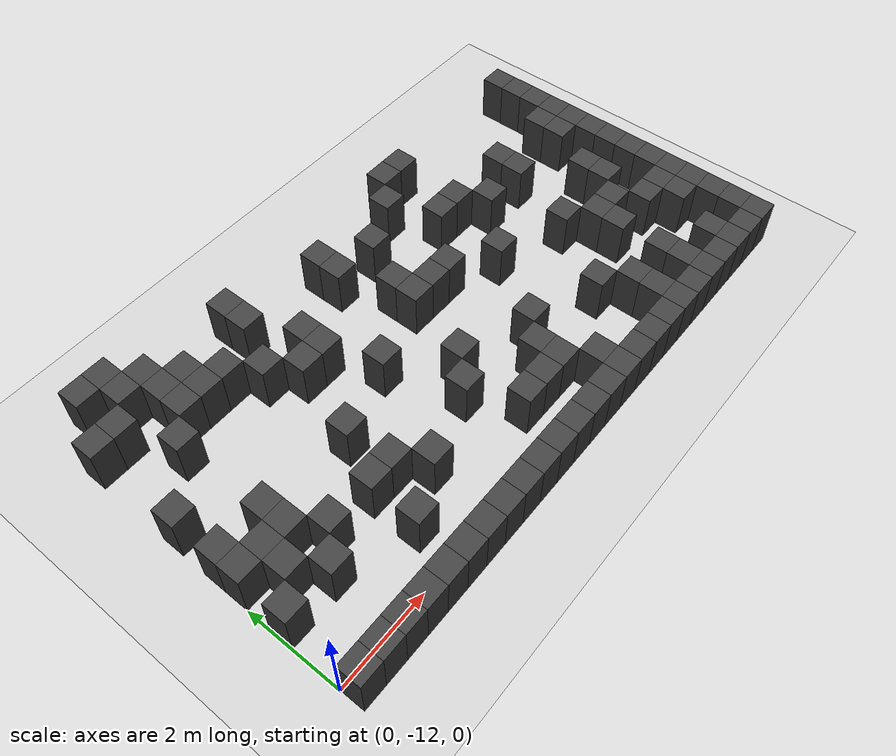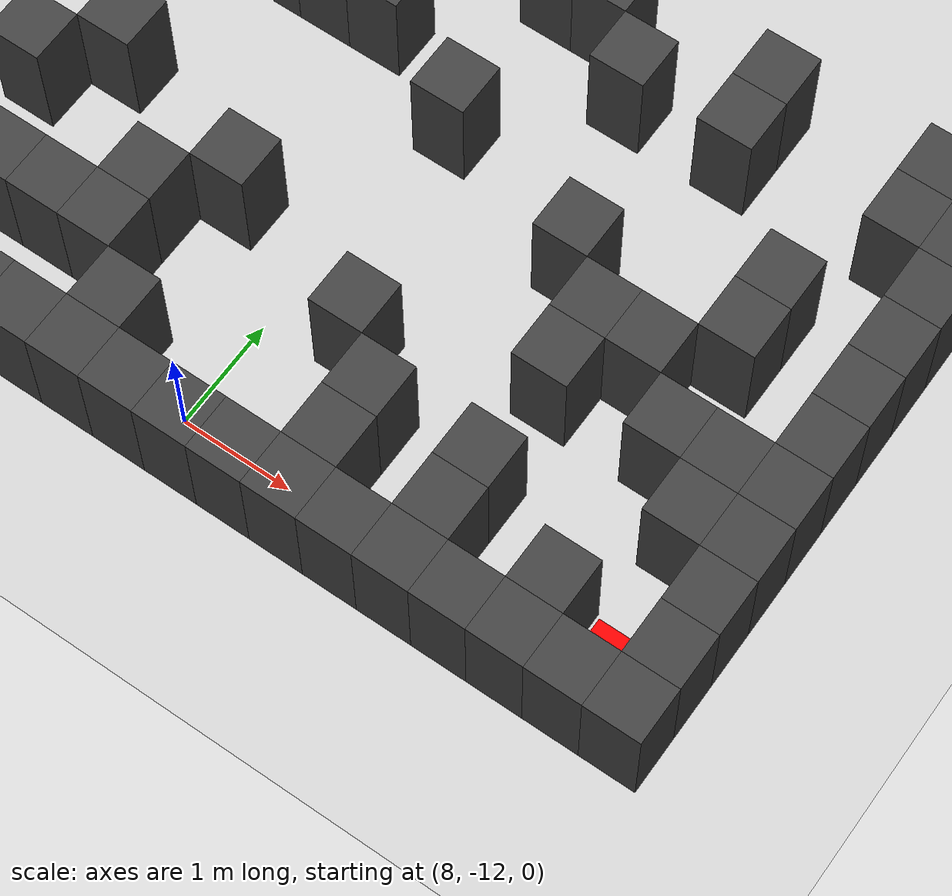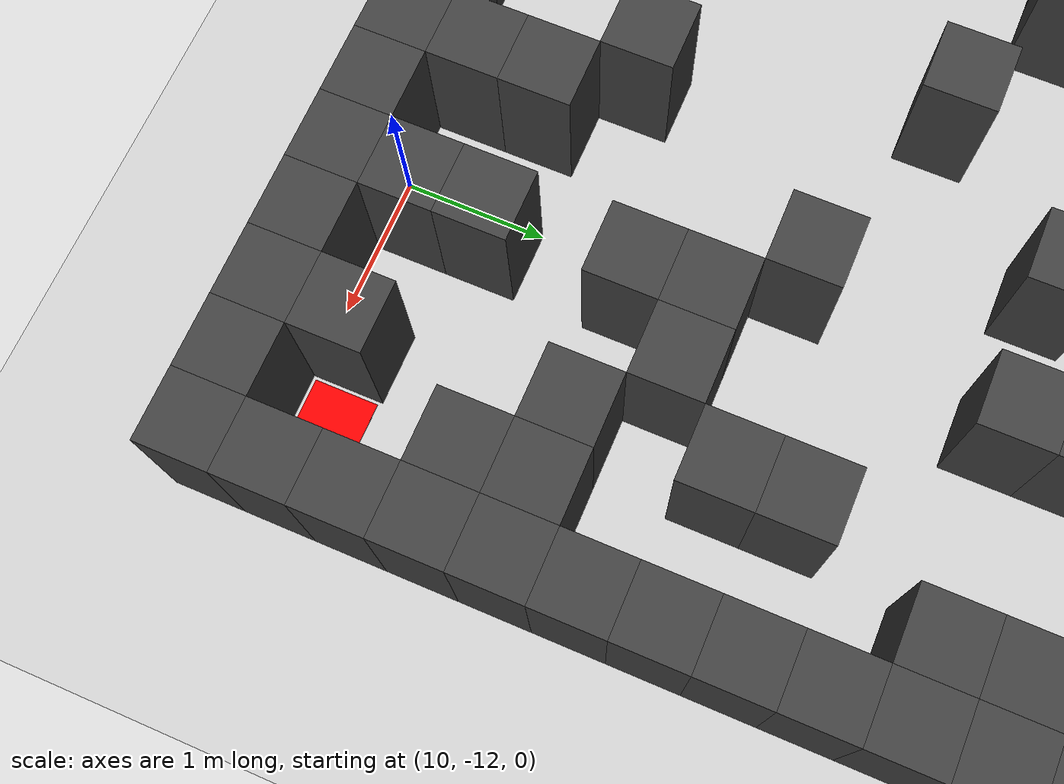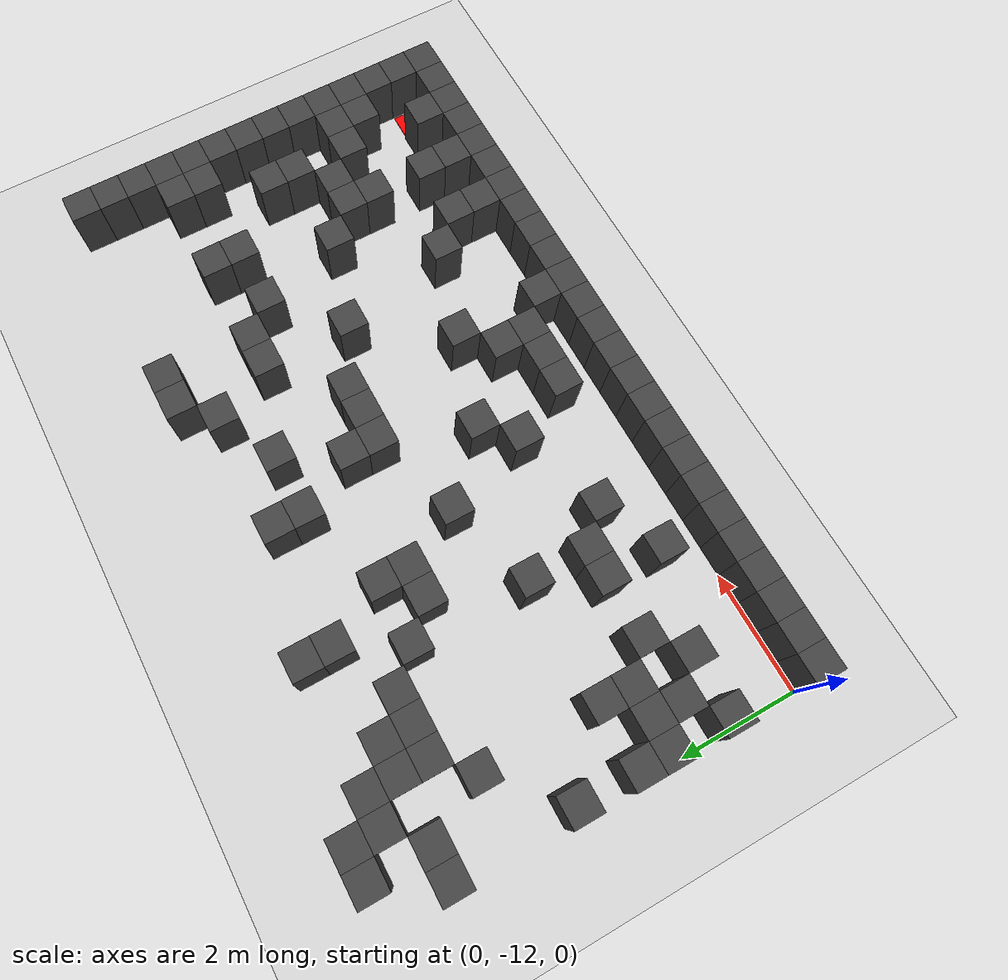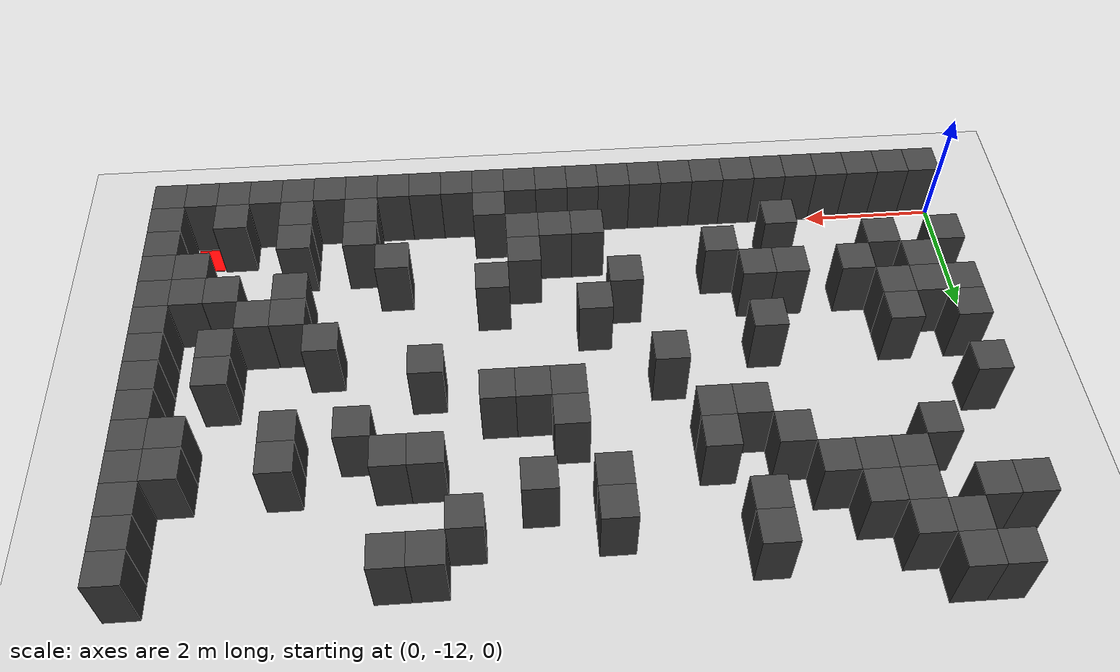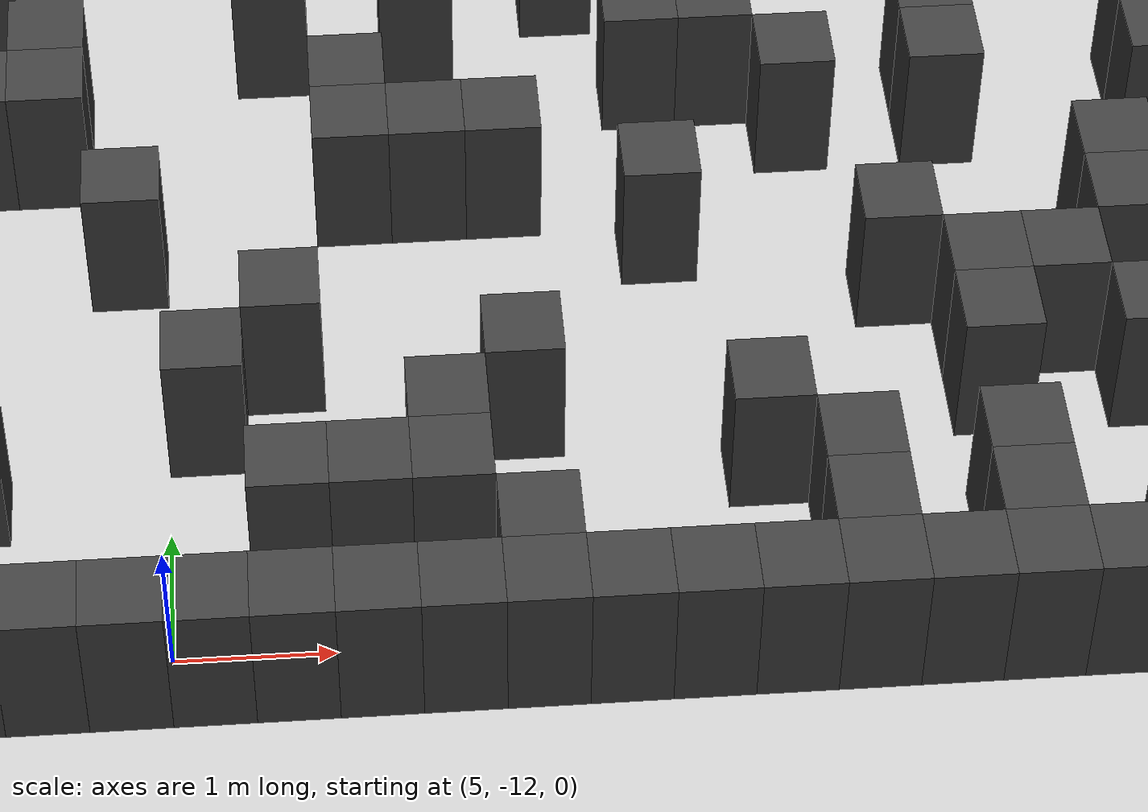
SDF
<sdf version="1.7">
 <world name="map_4390">
  <model name="ground_plane">
   <static>true</static>
   <link name="link">
    <collision name="collision">
     <geometry><plane><normal>0 0 1</normal><size>200 200</size></plane></geometry>
    </collision>
    <visual name="visual">
     <geometry><plane><normal>0 0 1</normal><size>200 200</size></plane></geometry>
     <material><ambient>0.8 0.8 0.8 1</ambient><diffuse>0.8 0.8 0.8 1</diffuse></material>
    </visual>
   </link>
  </model>
  <model name="maze_environment">
   <static>true</static>
   <link name="wall_459">
    <pose>0.750 -5.250 0.500 0 0 0</pose>
    <collision name="col"><geometry><box><size>0.5 0.5 1.0</size></box></geometry></collision>
    <visual name="vis">
     <geometry><box><size>0.5 0.5 1.0</size></box></geometry>
     <material><ambient>0.15 0.15 0.15 1</ambient><diffuse>0.25 0.25 0.25 1</diffuse></material>
    </visual>
   </link>
   <link name="wall_460">
    <pose>1.250 -5.250 0.500 0 0 0</pose>
    <collision name="col"><geometry><box><size>0.5 0.5 1.0</size></box></geometry></collision>
    <visual name="vis">
     <geometry><box><size>0.5 0.5 1.0</size></box></geometry>
     <material><ambient>0.15 0.15 0.15 1</ambient><diffuse>0.25 0.25 0.25 1</diffuse></material>
    </visual>
   </link>
   <link name="wall_474">
    <pose>1.250 -5.750 0.500 0 0 0</pose>
    <collision name="col"><geometry><box><size>0.5 0.5 1.0</size></box></geometry></collision>
    <visual name="vis">
     <geometry><box><size>0.5 0.5 1.0</size></box></geometry>
     <material><ambient>0.15 0.15 0.15 1</ambient><diffuse>0.25 0.25 0.25 1</diffuse></material>
    </visual>
   </link>
   <link name="wall_475">
    <pose>1.750 -5.750 0.500 0 0 0</pose>
    <collision name="col"><geometry><box><size>0.5 0.5 1.0</size></box></geometry></collision>
    <visual name="vis">
     <geometry><box><size>0.5 0.5 1.0</size></box></geometry>
     <material><ambient>0.15 0.15 0.15 1</ambient><diffuse>0.25 0.25 0.25 1</diffuse></material>
    </visual>
   </link>
   <link name="wall_476">
    <pose>3.750 -5.750 0.500 0 0 0</pose>
    <collision name="col"><geometry><box><size>0.5 0.5 1.0</size></box></geometry></collision>
    <visual name="vis">
     <geometry><box><size>0.5 0.5 1.0</size></box></geometry>
     <material><ambient>0.15 0.15 0.15 1</ambient><diffuse>0.25 0.25 0.25 1</diffuse></material>
    </visual>
   </link>
   <link name="wall_477">
    <pose>8.250 -5.750 0.500 0 0 0</pose>
    <collision name="col"><geometry><box><size>0.5 0.5 1.0</size></box></geometry></collision>
    <visual name="vis">
     <geometry><box><size>0.5 0.5 1.0</size></box></geometry>
     <material><ambient>0.15 0.15 0.15 1</ambient><diffuse>0.25 0.25 0.25 1</diffuse></material>
    </visual>
   </link>
   <link name="wall_478">
    <pose>8.750 -5.750 0.500 0 0 0</pose>
    <collision name="col"><geometry><box><size>0.5 0.5 1.0</size></box></geometry></collision>
    <visual name="vis">
     <geometry><box><size>0.5 0.5 1.0</size></box></geometry>
     <material><ambient>0.15 0.15 0.15 1</ambient><diffuse>0.25 0.25 0.25 1</diffuse></material>
    </visual>
   </link>
   <link name="wall_479">
    <pose>12.250 -5.750 0.500 0 0 0</pose>
    <collision name="col"><geometry><box><size>0.5 0.5 1.0</size></box></geometry></collision>
    <visual name="vis">
     <geometry><box><size>0.5 0.5 1.0</size></box></geometry>
     <material><ambient>0.15 0.15 0.15 1</ambient><diffuse>0.25 0.25 0.25 1</diffuse></material>
    </visual>
   </link>
   <link name="wall_486">
    <pose>0.250 -6.250 0.500 0 0 0</pose>
    <collision name="col"><geometry><box><size>0.5 0.5 1.0</size></box></geometry></collision>
    <visual name="vis">
     <geometry><box><size>0.5 0.5 1.0</size></box></geometry>
     <material><ambient>0.15 0.15 0.15 1</ambient><diffuse>0.25 0.25 0.25 1</diffuse></material>
    </visual>
   </link>
   <link name="wall_487">
    <pose>0.750 -6.250 0.500 0 0 0</pose>
    <collision name="col"><geometry><box><size>0.5 0.5 1.0</size></box></geometry></collision>
    <visual name="vis">
     <geometry><box><size>0.5 0.5 1.0</size></box></geometry>
     <material><ambient>0.15 0.15 0.15 1</ambient><diffuse>0.25 0.25 0.25 1</diffuse></material>
    </visual>
   </link>
   <link name="wall_488">
    <pose>1.750 -6.250 0.500 0 0 0</pose>
    <collision name="col"><geometry><box><size>0.5 0.5 1.0</size></box></geometry></collision>
    <visual name="vis">
     <geometry><box><size>0.5 0.5 1.0</size></box></geometry>
     <material><ambient>0.15 0.15 0.15 1</ambient><diffuse>0.25 0.25 0.25 1</diffuse></material>
    </visual>
   </link>
   <link name="wall_489">
    <pose>2.250 -6.250 0.500 0 0 0</pose>
    <collision name="col"><geometry><box><size>0.5 0.5 1.0</size></box></geometry></collision>
    <visual name="vis">
     <geometry><box><size>0.5 0.5 1.0</size></box></geometry>
     <material><ambient>0.15 0.15 0.15 1</ambient><diffuse>0.25 0.25 0.25 1</diffuse></material>
    </visual>
   </link>
   <link name="wall_490">
    <pose>3.750 -6.250 0.500 0 0 0</pose>
    <collision name="col"><geometry><box><size>0.5 0.5 1.0</size></box></geometry></collision>
    <visual name="vis">
     <geometry><box><size>0.5 0.5 1.0</size></box></geometry>
     <material><ambient>0.15 0.15 0.15 1</ambient><diffuse>0.25 0.25 0.25 1</diffuse></material>
    </visual>
   </link>
   <link name="wall_491">
    <pose>5.750 -6.250 0.500 0 0 0</pose>
    <collision name="col"><geometry><box><size>0.5 0.5 1.0</size></box></geometry></collision>
    <visual name="vis">
     <geometry><box><size>0.5 0.5 1.0</size></box></geometry>
     <material><ambient>0.15 0.15 0.15 1</ambient><diffuse>0.25 0.25 0.25 1</diffuse></material>
    </visual>
   </link>
   <link name="wall_492">
    <pose>7.750 -6.250 0.500 0 0 0</pose>
    <collision name="col"><geometry><box><size>0.5 0.5 1.0</size></box></geometry></collision>
    <visual name="vis">
     <geometry><box><size>0.5 0.5 1.0</size></box></geometry>
     <material><ambient>0.15 0.15 0.15 1</ambient><diffuse>0.25 0.25 0.25 1</diffuse></material>
    </visual>
   </link>
   <link name="wall_493">
    <pose>12.250 -6.250 0.500 0 0 0</pose>
    <collision name="col"><geometry><box><size>0.5 0.5 1.0</size></box></geometry></collision>
    <visual name="vis">
     <geometry><box><size>0.5 0.5 1.0</size></box></geometry>
     <material><ambient>0.15 0.15 0.15 1</ambient><diffuse>0.25 0.25 0.25 1</diffuse></material>
    </visual>
   </link>
   <link name="wall_501">
    <pose>1.750 -6.750 0.500 0 0 0</pose>
    <collision name="col"><geometry><box><size>0.5 0.5 1.0</size></box></geometry></collision>
    <visual name="vis">
     <geometry><box><size>0.5 0.5 1.0</size></box></geometry>
     <material><ambient>0.15 0.15 0.15 1</ambient><diffuse>0.25 0.25 0.25 1</diffuse></material>
    </visual>
   </link>
   <link name="wall_502">
    <pose>2.250 -6.750 0.500 0 0 0</pose>
    <collision name="col"><geometry><box><size>0.5 0.5 1.0</size></box></geometry></collision>
    <visual name="vis">
     <geometry><box><size>0.5 0.5 1.0</size></box></geometry>
     <material><ambient>0.15 0.15 0.15 1</ambient><diffuse>0.25 0.25 0.25 1</diffuse></material>
    </visual>
   </link>
   <link name="wall_503">
    <pose>2.750 -6.750 0.500 0 0 0</pose>
    <collision name="col"><geometry><box><size>0.5 0.5 1.0</size></box></geometry></collision>
    <visual name="vis">
     <geometry><box><size>0.5 0.5 1.0</size></box></geometry>
     <material><ambient>0.15 0.15 0.15 1</ambient><diffuse>0.25 0.25 0.25 1</diffuse></material>
    </visual>
   </link>
   <link name="wall_504">
    <pose>5.750 -6.750 0.500 0 0 0</pose>
    <collision name="col"><geometry><box><size>0.5 0.5 1.0</size></box></geometry></collision>
    <visual name="vis">
     <geometry><box><size>0.5 0.5 1.0</size></box></geometry>
     <material><ambient>0.15 0.15 0.15 1</ambient><diffuse>0.25 0.25 0.25 1</diffuse></material>
    </visual>
   </link>
   <link name="wall_505">
    <pose>6.750 -6.750 0.500 0 0 0</pose>
    <collision name="col"><geometry><box><size>0.5 0.5 1.0</size></box></geometry></collision>
    <visual name="vis">
     <geometry><box><size>0.5 0.5 1.0</size></box></geometry>
     <material><ambient>0.15 0.15 0.15 1</ambient><diffuse>0.25 0.25 0.25 1</diffuse></material>
    </visual>
   </link>
   <link name="wall_506">
    <pose>12.250 -6.750 0.500 0 0 0</pose>
    <collision name="col"><geometry><box><size>0.5 0.5 1.0</size></box></geometry></collision>
    <visual name="vis">
     <geometry><box><size>0.5 0.5 1.0</size></box></geometry>
     <material><ambient>0.15 0.15 0.15 1</ambient><diffuse>0.25 0.25 0.25 1</diffuse></material>
    </visual>
   </link>
   <link name="wall_516">
    <pose>1.250 -7.250 0.500 0 0 0</pose>
    <collision name="col"><geometry><box><size>0.5 0.5 1.0</size></box></geometry></collision>
    <visual name="vis">
     <geometry><box><size>0.5 0.5 1.0</size></box></geometry>
     <material><ambient>0.15 0.15 0.15 1</ambient><diffuse>0.25 0.25 0.25 1</diffuse></material>
    </visual>
   </link>
   <link name="wall_517">
    <pose>3.250 -7.250 0.500 0 0 0</pose>
    <collision name="col"><geometry><box><size>0.5 0.5 1.0</size></box></geometry></collision>
    <visual name="vis">
     <geometry><box><size>0.5 0.5 1.0</size></box></geometry>
     <material><ambient>0.15 0.15 0.15 1</ambient><diffuse>0.25 0.25 0.25 1</diffuse></material>
    </visual>
   </link>
   <link name="wall_518">
    <pose>4.250 -7.250 0.500 0 0 0</pose>
    <collision name="col"><geometry><box><size>0.5 0.5 1.0</size></box></geometry></collision>
    <visual name="vis">
     <geometry><box><size>0.5 0.5 1.0</size></box></geometry>
     <material><ambient>0.15 0.15 0.15 1</ambient><diffuse>0.25 0.25 0.25 1</diffuse></material>
    </visual>
   </link>
   <link name="wall_519">
    <pose>8.250 -7.250 0.500 0 0 0</pose>
    <collision name="col"><geometry><box><size>0.5 0.5 1.0</size></box></geometry></collision>
    <visual name="vis">
     <geometry><box><size>0.5 0.5 1.0</size></box></geometry>
     <material><ambient>0.15 0.15 0.15 1</ambient><diffuse>0.25 0.25 0.25 1</diffuse></material>
    </visual>
   </link>
   <link name="wall_520">
    <pose>8.750 -7.250 0.500 0 0 0</pose>
    <collision name="col"><geometry><box><size>0.5 0.5 1.0</size></box></geometry></collision>
    <visual name="vis">
     <geometry><box><size>0.5 0.5 1.0</size></box></geometry>
     <material><ambient>0.15 0.15 0.15 1</ambient><diffuse>0.25 0.25 0.25 1</diffuse></material>
    </visual>
   </link>
   <link name="wall_521">
    <pose>10.250 -7.250 0.500 0 0 0</pose>
    <collision name="col"><geometry><box><size>0.5 0.5 1.0</size></box></geometry></collision>
    <visual name="vis">
     <geometry><box><size>0.5 0.5 1.0</size></box></geometry>
     <material><ambient>0.15 0.15 0.15 1</ambient><diffuse>0.25 0.25 0.25 1</diffuse></material>
    </visual>
   </link>
   <link name="wall_522">
    <pose>11.750 -7.250 0.500 0 0 0</pose>
    <collision name="col"><geometry><box><size>0.5 0.5 1.0</size></box></geometry></collision>
    <visual name="vis">
     <geometry><box><size>0.5 0.5 1.0</size></box></geometry>
     <material><ambient>0.15 0.15 0.15 1</ambient><diffuse>0.25 0.25 0.25 1</diffuse></material>
    </visual>
   </link>
   <link name="wall_523">
    <pose>12.250 -7.250 0.500 0 0 0</pose>
    <collision name="col"><geometry><box><size>0.5 0.5 1.0</size></box></geometry></collision>
    <visual name="vis">
     <geometry><box><size>0.5 0.5 1.0</size></box></geometry>
     <material><ambient>0.15 0.15 0.15 1</ambient><diffuse>0.25 0.25 0.25 1</diffuse></material>
    </visual>
   </link>
   <link name="wall_530">
    <pose>3.750 -7.750 0.500 0 0 0</pose>
    <collision name="col"><geometry><box><size>0.5 0.5 1.0</size></box></geometry></collision>
    <visual name="vis">
     <geometry><box><size>0.5 0.5 1.0</size></box></geometry>
     <material><ambient>0.15 0.15 0.15 1</ambient><diffuse>0.25 0.25 0.25 1</diffuse></material>
    </visual>
   </link>
   <link name="wall_531">
    <pose>4.250 -7.750 0.500 0 0 0</pose>
    <collision name="col"><geometry><box><size>0.5 0.5 1.0</size></box></geometry></collision>
    <visual name="vis">
     <geometry><box><size>0.5 0.5 1.0</size></box></geometry>
     <material><ambient>0.15 0.15 0.15 1</ambient><diffuse>0.25 0.25 0.25 1</diffuse></material>
    </visual>
   </link>
   <link name="wall_532">
    <pose>6.250 -7.750 0.500 0 0 0</pose>
    <collision name="col"><geometry><box><size>0.5 0.5 1.0</size></box></geometry></collision>
    <visual name="vis">
     <geometry><box><size>0.5 0.5 1.0</size></box></geometry>
     <material><ambient>0.15 0.15 0.15 1</ambient><diffuse>0.25 0.25 0.25 1</diffuse></material>
    </visual>
   </link>
   <link name="wall_533">
    <pose>9.250 -7.750 0.500 0 0 0</pose>
    <collision name="col"><geometry><box><size>0.5 0.5 1.0</size></box></geometry></collision>
    <visual name="vis">
     <geometry><box><size>0.5 0.5 1.0</size></box></geometry>
     <material><ambient>0.15 0.15 0.15 1</ambient><diffuse>0.25 0.25 0.25 1</diffuse></material>
    </visual>
   </link>
   <link name="wall_534">
    <pose>10.250 -7.750 0.500 0 0 0</pose>
    <collision name="col"><geometry><box><size>0.5 0.5 1.0</size></box></geometry></collision>
    <visual name="vis">
     <geometry><box><size>0.5 0.5 1.0</size></box></geometry>
     <material><ambient>0.15 0.15 0.15 1</ambient><diffuse>0.25 0.25 0.25 1</diffuse></material>
    </visual>
   </link>
   <link name="wall_535">
    <pose>11.750 -7.750 0.500 0 0 0</pose>
    <collision name="col"><geometry><box><size>0.5 0.5 1.0</size></box></geometry></collision>
    <visual name="vis">
     <geometry><box><size>0.5 0.5 1.0</size></box></geometry>
     <material><ambient>0.15 0.15 0.15 1</ambient><diffuse>0.25 0.25 0.25 1</diffuse></material>
    </visual>
   </link>
   <link name="wall_536">
    <pose>12.250 -7.750 0.500 0 0 0</pose>
    <collision name="col"><geometry><box><size>0.5 0.5 1.0</size></box></geometry></collision>
    <visual name="vis">
     <geometry><box><size>0.5 0.5 1.0</size></box></geometry>
     <material><ambient>0.15 0.15 0.15 1</ambient><diffuse>0.25 0.25 0.25 1</diffuse></material>
    </visual>
   </link>
   <link name="wall_542">
    <pose>0.250 -8.250 0.500 0 0 0</pose>
    <collision name="col"><geometry><box><size>0.5 0.5 1.0</size></box></geometry></collision>
    <visual name="vis">
     <geometry><box><size>0.5 0.5 1.0</size></box></geometry>
     <material><ambient>0.15 0.15 0.15 1</ambient><diffuse>0.25 0.25 0.25 1</diffuse></material>
    </visual>
   </link>
   <link name="wall_543">
    <pose>6.250 -8.250 0.500 0 0 0</pose>
    <collision name="col"><geometry><box><size>0.5 0.5 1.0</size></box></geometry></collision>
    <visual name="vis">
     <geometry><box><size>0.5 0.5 1.0</size></box></geometry>
     <material><ambient>0.15 0.15 0.15 1</ambient><diffuse>0.25 0.25 0.25 1</diffuse></material>
    </visual>
   </link>
   <link name="wall_544">
    <pose>6.750 -8.250 0.500 0 0 0</pose>
    <collision name="col"><geometry><box><size>0.5 0.5 1.0</size></box></geometry></collision>
    <visual name="vis">
     <geometry><box><size>0.5 0.5 1.0</size></box></geometry>
     <material><ambient>0.15 0.15 0.15 1</ambient><diffuse>0.25 0.25 0.25 1</diffuse></material>
    </visual>
   </link>
   <link name="wall_545">
    <pose>7.250 -8.250 0.500 0 0 0</pose>
    <collision name="col"><geometry><box><size>0.5 0.5 1.0</size></box></geometry></collision>
    <visual name="vis">
     <geometry><box><size>0.5 0.5 1.0</size></box></geometry>
     <material><ambient>0.15 0.15 0.15 1</ambient><diffuse>0.25 0.25 0.25 1</diffuse></material>
    </visual>
   </link>
   <link name="wall_546">
    <pose>12.250 -8.250 0.500 0 0 0</pose>
    <collision name="col"><geometry><box><size>0.5 0.5 1.0</size></box></geometry></collision>
    <visual name="vis">
     <geometry><box><size>0.5 0.5 1.0</size></box></geometry>
     <material><ambient>0.15 0.15 0.15 1</ambient><diffuse>0.25 0.25 0.25 1</diffuse></material>
    </visual>
   </link>
   <link name="wall_552">
    <pose>4.750 -8.750 0.500 0 0 0</pose>
    <collision name="col"><geometry><box><size>0.5 0.5 1.0</size></box></geometry></collision>
    <visual name="vis">
     <geometry><box><size>0.5 0.5 1.0</size></box></geometry>
     <material><ambient>0.15 0.15 0.15 1</ambient><diffuse>0.25 0.25 0.25 1</diffuse></material>
    </visual>
   </link>
   <link name="wall_553">
    <pose>8.250 -8.750 0.500 0 0 0</pose>
    <collision name="col"><geometry><box><size>0.5 0.5 1.0</size></box></geometry></collision>
    <visual name="vis">
     <geometry><box><size>0.5 0.5 1.0</size></box></geometry>
     <material><ambient>0.15 0.15 0.15 1</ambient><diffuse>0.25 0.25 0.25 1</diffuse></material>
    </visual>
   </link>
   <link name="wall_554">
    <pose>11.250 -8.750 0.500 0 0 0</pose>
    <collision name="col"><geometry><box><size>0.5 0.5 1.0</size></box></geometry></collision>
    <visual name="vis">
     <geometry><box><size>0.5 0.5 1.0</size></box></geometry>
     <material><ambient>0.15 0.15 0.15 1</ambient><diffuse>0.25 0.25 0.25 1</diffuse></material>
    </visual>
   </link>
   <link name="wall_555">
    <pose>12.250 -8.750 0.500 0 0 0</pose>
    <collision name="col"><geometry><box><size>0.5 0.5 1.0</size></box></geometry></collision>
    <visual name="vis">
     <geometry><box><size>0.5 0.5 1.0</size></box></geometry>
     <material><ambient>0.15 0.15 0.15 1</ambient><diffuse>0.25 0.25 0.25 1</diffuse></material>
    </visual>
   </link>
   <link name="wall_560">
    <pose>0.250 -9.250 0.500 0 0 0</pose>
    <collision name="col"><geometry><box><size>0.5 0.5 1.0</size></box></geometry></collision>
    <visual name="vis">
     <geometry><box><size>0.5 0.5 1.0</size></box></geometry>
     <material><ambient>0.15 0.15 0.15 1</ambient><diffuse>0.25 0.25 0.25 1</diffuse></material>
    </visual>
   </link>
   <link name="wall_561">
    <pose>1.250 -9.250 0.500 0 0 0</pose>
    <collision name="col"><geometry><box><size>0.5 0.5 1.0</size></box></geometry></collision>
    <visual name="vis">
     <geometry><box><size>0.5 0.5 1.0</size></box></geometry>
     <material><ambient>0.15 0.15 0.15 1</ambient><diffuse>0.25 0.25 0.25 1</diffuse></material>
    </visual>
   </link>
   <link name="wall_562">
    <pose>3.250 -9.250 0.500 0 0 0</pose>
    <collision name="col"><geometry><box><size>0.5 0.5 1.0</size></box></geometry></collision>
    <visual name="vis">
     <geometry><box><size>0.5 0.5 1.0</size></box></geometry>
     <material><ambient>0.15 0.15 0.15 1</ambient><diffuse>0.25 0.25 0.25 1</diffuse></material>
    </visual>
   </link>
   <link name="wall_563">
    <pose>9.750 -9.250 0.500 0 0 0</pose>
    <collision name="col"><geometry><box><size>0.5 0.5 1.0</size></box></geometry></collision>
    <visual name="vis">
     <geometry><box><size>0.5 0.5 1.0</size></box></geometry>
     <material><ambient>0.15 0.15 0.15 1</ambient><diffuse>0.25 0.25 0.25 1</diffuse></material>
    </visual>
   </link>
   <link name="wall_564">
    <pose>11.250 -9.250 0.500 0 0 0</pose>
    <collision name="col"><geometry><box><size>0.5 0.5 1.0</size></box></geometry></collision>
    <visual name="vis">
     <geometry><box><size>0.5 0.5 1.0</size></box></geometry>
     <material><ambient>0.15 0.15 0.15 1</ambient><diffuse>0.25 0.25 0.25 1</diffuse></material>
    </visual>
   </link>
   <link name="wall_565">
    <pose>12.250 -9.250 0.500 0 0 0</pose>
    <collision name="col"><geometry><box><size>0.5 0.5 1.0</size></box></geometry></collision>
    <visual name="vis">
     <geometry><box><size>0.5 0.5 1.0</size></box></geometry>
     <material><ambient>0.15 0.15 0.15 1</ambient><diffuse>0.25 0.25 0.25 1</diffuse></material>
    </visual>
   </link>
   <link name="wall_573">
    <pose>0.250 -9.750 0.500 0 0 0</pose>
    <collision name="col"><geometry><box><size>0.5 0.5 1.0</size></box></geometry></collision>
    <visual name="vis">
     <geometry><box><size>0.5 0.5 1.0</size></box></geometry>
     <material><ambient>0.15 0.15 0.15 1</ambient><diffuse>0.25 0.25 0.25 1</diffuse></material>
    </visual>
   </link>
   <link name="wall_574">
    <pose>0.750 -9.750 0.500 0 0 0</pose>
    <collision name="col"><geometry><box><size>0.5 0.5 1.0</size></box></geometry></collision>
    <visual name="vis">
     <geometry><box><size>0.5 0.5 1.0</size></box></geometry>
     <material><ambient>0.15 0.15 0.15 1</ambient><diffuse>0.25 0.25 0.25 1</diffuse></material>
    </visual>
   </link>
   <link name="wall_575">
    <pose>1.250 -9.750 0.500 0 0 0</pose>
    <collision name="col"><geometry><box><size>0.5 0.5 1.0</size></box></geometry></collision>
    <visual name="vis">
     <geometry><box><size>0.5 0.5 1.0</size></box></geometry>
     <material><ambient>0.15 0.15 0.15 1</ambient><diffuse>0.25 0.25 0.25 1</diffuse></material>
    </visual>
   </link>
   <link name="wall_576">
    <pose>5.750 -9.750 0.500 0 0 0</pose>
    <collision name="col"><geometry><box><size>0.5 0.5 1.0</size></box></geometry></collision>
    <visual name="vis">
     <geometry><box><size>0.5 0.5 1.0</size></box></geometry>
     <material><ambient>0.15 0.15 0.15 1</ambient><diffuse>0.25 0.25 0.25 1</diffuse></material>
    </visual>
   </link>
   <link name="wall_577">
    <pose>10.250 -9.750 0.500 0 0 0</pose>
    <collision name="col"><geometry><box><size>0.5 0.5 1.0</size></box></geometry></collision>
    <visual name="vis">
     <geometry><box><size>0.5 0.5 1.0</size></box></geometry>
     <material><ambient>0.15 0.15 0.15 1</ambient><diffuse>0.25 0.25 0.25 1</diffuse></material>
    </visual>
   </link>
   <link name="wall_578">
    <pose>10.750 -9.750 0.500 0 0 0</pose>
    <collision name="col"><geometry><box><size>0.5 0.5 1.0</size></box></geometry></collision>
    <visual name="vis">
     <geometry><box><size>0.5 0.5 1.0</size></box></geometry>
     <material><ambient>0.15 0.15 0.15 1</ambient><diffuse>0.25 0.25 0.25 1</diffuse></material>
    </visual>
   </link>
   <link name="wall_579">
    <pose>12.250 -9.750 0.500 0 0 0</pose>
    <collision name="col"><geometry><box><size>0.5 0.5 1.0</size></box></geometry></collision>
    <visual name="vis">
     <geometry><box><size>0.5 0.5 1.0</size></box></geometry>
     <material><ambient>0.15 0.15 0.15 1</ambient><diffuse>0.25 0.25 0.25 1</diffuse></material>
    </visual>
   </link>
   <link name="wall_587">
    <pose>0.750 -10.250 0.500 0 0 0</pose>
    <collision name="col"><geometry><box><size>0.5 0.5 1.0</size></box></geometry></collision>
    <visual name="vis">
     <geometry><box><size>0.5 0.5 1.0</size></box></geometry>
     <material><ambient>0.15 0.15 0.15 1</ambient><diffuse>0.25 0.25 0.25 1</diffuse></material>
    </visual>
   </link>
   <link name="wall_588">
    <pose>1.750 -10.250 0.500 0 0 0</pose>
    <collision name="col"><geometry><box><size>0.5 0.5 1.0</size></box></geometry></collision>
    <visual name="vis">
     <geometry><box><size>0.5 0.5 1.0</size></box></geometry>
     <material><ambient>0.15 0.15 0.15 1</ambient><diffuse>0.25 0.25 0.25 1</diffuse></material>
    </visual>
   </link>
   <link name="wall_589">
    <pose>2.750 -10.250 0.500 0 0 0</pose>
    <collision name="col"><geometry><box><size>0.5 0.5 1.0</size></box></geometry></collision>
    <visual name="vis">
     <geometry><box><size>0.5 0.5 1.0</size></box></geometry>
     <material><ambient>0.15 0.15 0.15 1</ambient><diffuse>0.25 0.25 0.25 1</diffuse></material>
    </visual>
   </link>
   <link name="wall_590">
    <pose>3.250 -10.250 0.500 0 0 0</pose>
    <collision name="col"><geometry><box><size>0.5 0.5 1.0</size></box></geometry></collision>
    <visual name="vis">
     <geometry><box><size>0.5 0.5 1.0</size></box></geometry>
     <material><ambient>0.15 0.15 0.15 1</ambient><diffuse>0.25 0.25 0.25 1</diffuse></material>
    </visual>
   </link>
   <link name="wall_591">
    <pose>5.250 -10.250 0.500 0 0 0</pose>
    <collision name="col"><geometry><box><size>0.5 0.5 1.0</size></box></geometry></collision>
    <visual name="vis">
     <geometry><box><size>0.5 0.5 1.0</size></box></geometry>
     <material><ambient>0.15 0.15 0.15 1</ambient><diffuse>0.25 0.25 0.25 1</diffuse></material>
    </visual>
   </link>
   <link name="wall_592">
    <pose>7.250 -10.250 0.500 0 0 0</pose>
    <collision name="col"><geometry><box><size>0.5 0.5 1.0</size></box></geometry></collision>
    <visual name="vis">
     <geometry><box><size>0.5 0.5 1.0</size></box></geometry>
     <material><ambient>0.15 0.15 0.15 1</ambient><diffuse>0.25 0.25 0.25 1</diffuse></material>
    </visual>
   </link>
   <link name="wall_593">
    <pose>10.250 -10.250 0.500 0 0 0</pose>
    <collision name="col"><geometry><box><size>0.5 0.5 1.0</size></box></geometry></collision>
    <visual name="vis">
     <geometry><box><size>0.5 0.5 1.0</size></box></geometry>
     <material><ambient>0.15 0.15 0.15 1</ambient><diffuse>0.25 0.25 0.25 1</diffuse></material>
    </visual>
   </link>
   <link name="wall_594">
    <pose>11.250 -10.250 0.500 0 0 0</pose>
    <collision name="col"><geometry><box><size>0.5 0.5 1.0</size></box></geometry></collision>
    <visual name="vis">
     <geometry><box><size>0.5 0.5 1.0</size></box></geometry>
     <material><ambient>0.15 0.15 0.15 1</ambient><diffuse>0.25 0.25 0.25 1</diffuse></material>
    </visual>
   </link>
   <link name="wall_595">
    <pose>11.750 -10.250 0.500 0 0 0</pose>
    <collision name="col"><geometry><box><size>0.5 0.5 1.0</size></box></geometry></collision>
    <visual name="vis">
     <geometry><box><size>0.5 0.5 1.0</size></box></geometry>
     <material><ambient>0.15 0.15 0.15 1</ambient><diffuse>0.25 0.25 0.25 1</diffuse></material>
    </visual>
   </link>
   <link name="wall_596">
    <pose>12.250 -10.250 0.500 0 0 0</pose>
    <collision name="col"><geometry><box><size>0.5 0.5 1.0</size></box></geometry></collision>
    <visual name="vis">
     <geometry><box><size>0.5 0.5 1.0</size></box></geometry>
     <material><ambient>0.15 0.15 0.15 1</ambient><diffuse>0.25 0.25 0.25 1</diffuse></material>
    </visual>
   </link>
   <link name="wall_601">
    <pose>0.250 -10.750 0.500 0 0 0</pose>
    <collision name="col"><geometry><box><size>0.5 0.5 1.0</size></box></geometry></collision>
    <visual name="vis">
     <geometry><box><size>0.5 0.5 1.0</size></box></geometry>
     <material><ambient>0.15 0.15 0.15 1</ambient><diffuse>0.25 0.25 0.25 1</diffuse></material>
    </visual>
   </link>
   <link name="wall_602">
    <pose>1.250 -10.750 0.500 0 0 0</pose>
    <collision name="col"><geometry><box><size>0.5 0.5 1.0</size></box></geometry></collision>
    <visual name="vis">
     <geometry><box><size>0.5 0.5 1.0</size></box></geometry>
     <material><ambient>0.15 0.15 0.15 1</ambient><diffuse>0.25 0.25 0.25 1</diffuse></material>
    </visual>
   </link>
   <link name="wall_603">
    <pose>3.750 -10.750 0.500 0 0 0</pose>
    <collision name="col"><geometry><box><size>0.5 0.5 1.0</size></box></geometry></collision>
    <visual name="vis">
     <geometry><box><size>0.5 0.5 1.0</size></box></geometry>
     <material><ambient>0.15 0.15 0.15 1</ambient><diffuse>0.25 0.25 0.25 1</diffuse></material>
    </visual>
   </link>
   <link name="wall_604">
    <pose>6.750 -10.750 0.500 0 0 0</pose>
    <collision name="col"><geometry><box><size>0.5 0.5 1.0</size></box></geometry></collision>
    <visual name="vis">
     <geometry><box><size>0.5 0.5 1.0</size></box></geometry>
     <material><ambient>0.15 0.15 0.15 1</ambient><diffuse>0.25 0.25 0.25 1</diffuse></material>
    </visual>
   </link>
   <link name="wall_605">
    <pose>8.750 -10.750 0.500 0 0 0</pose>
    <collision name="col"><geometry><box><size>0.5 0.5 1.0</size></box></geometry></collision>
    <visual name="vis">
     <geometry><box><size>0.5 0.5 1.0</size></box></geometry>
     <material><ambient>0.15 0.15 0.15 1</ambient><diffuse>0.25 0.25 0.25 1</diffuse></material>
    </visual>
   </link>
   <link name="wall_606">
    <pose>11.750 -10.750 0.500 0 0 0</pose>
    <collision name="col"><geometry><box><size>0.5 0.5 1.0</size></box></geometry></collision>
    <visual name="vis">
     <geometry><box><size>0.5 0.5 1.0</size></box></geometry>
     <material><ambient>0.15 0.15 0.15 1</ambient><diffuse>0.25 0.25 0.25 1</diffuse></material>
    </visual>
   </link>
   <link name="wall_607">
    <pose>12.250 -10.750 0.500 0 0 0</pose>
    <collision name="col"><geometry><box><size>0.5 0.5 1.0</size></box></geometry></collision>
    <visual name="vis">
     <geometry><box><size>0.5 0.5 1.0</size></box></geometry>
     <material><ambient>0.15 0.15 0.15 1</ambient><diffuse>0.25 0.25 0.25 1</diffuse></material>
    </visual>
   </link>
   <link name="wall_612">
    <pose>2.750 -11.250 0.500 0 0 0</pose>
    <collision name="col"><geometry><box><size>0.5 0.5 1.0</size></box></geometry></collision>
    <visual name="vis">
     <geometry><box><size>0.5 0.5 1.0</size></box></geometry>
     <material><ambient>0.15 0.15 0.15 1</ambient><diffuse>0.25 0.25 0.25 1</diffuse></material>
    </visual>
   </link>
   <link name="wall_613">
    <pose>5.750 -11.250 0.500 0 0 0</pose>
    <collision name="col"><geometry><box><size>0.5 0.5 1.0</size></box></geometry></collision>
    <visual name="vis">
     <geometry><box><size>0.5 0.5 1.0</size></box></geometry>
     <material><ambient>0.15 0.15 0.15 1</ambient><diffuse>0.25 0.25 0.25 1</diffuse></material>
    </visual>
   </link>
   <link name="wall_614">
    <pose>6.250 -11.250 0.500 0 0 0</pose>
    <collision name="col"><geometry><box><size>0.5 0.5 1.0</size></box></geometry></collision>
    <visual name="vis">
     <geometry><box><size>0.5 0.5 1.0</size></box></geometry>
     <material><ambient>0.15 0.15 0.15 1</ambient><diffuse>0.25 0.25 0.25 1</diffuse></material>
    </visual>
   </link>
   <link name="wall_615">
    <pose>6.750 -11.250 0.500 0 0 0</pose>
    <collision name="col"><geometry><box><size>0.5 0.5 1.0</size></box></geometry></collision>
    <visual name="vis">
     <geometry><box><size>0.5 0.5 1.0</size></box></geometry>
     <material><ambient>0.15 0.15 0.15 1</ambient><diffuse>0.25 0.25 0.25 1</diffuse></material>
    </visual>
   </link>
   <link name="wall_616">
    <pose>9.250 -11.250 0.500 0 0 0</pose>
    <collision name="col"><geometry><box><size>0.5 0.5 1.0</size></box></geometry></collision>
    <visual name="vis">
     <geometry><box><size>0.5 0.5 1.0</size></box></geometry>
     <material><ambient>0.15 0.15 0.15 1</ambient><diffuse>0.25 0.25 0.25 1</diffuse></material>
    </visual>
   </link>
   <link name="wall_617">
    <pose>10.250 -11.250 0.500 0 0 0</pose>
    <collision name="col"><geometry><box><size>0.5 0.5 1.0</size></box></geometry></collision>
    <visual name="vis">
     <geometry><box><size>0.5 0.5 1.0</size></box></geometry>
     <material><ambient>0.15 0.15 0.15 1</ambient><diffuse>0.25 0.25 0.25 1</diffuse></material>
    </visual>
   </link>
   <link name="wall_618">
    <pose>12.250 -11.250 0.500 0 0 0</pose>
    <collision name="col"><geometry><box><size>0.5 0.5 1.0</size></box></geometry></collision>
    <visual name="vis">
     <geometry><box><size>0.5 0.5 1.0</size></box></geometry>
     <material><ambient>0.15 0.15 0.15 1</ambient><diffuse>0.25 0.25 0.25 1</diffuse></material>
    </visual>
   </link>
   <link name="wall_626">
    <pose>7.250 -11.750 0.500 0 0 0</pose>
    <collision name="col"><geometry><box><size>0.5 0.5 1.0</size></box></geometry></collision>
    <visual name="vis">
     <geometry><box><size>0.5 0.5 1.0</size></box></geometry>
     <material><ambient>0.15 0.15 0.15 1</ambient><diffuse>0.25 0.25 0.25 1</diffuse></material>
    </visual>
   </link>
   <link name="wall_627">
    <pose>9.250 -11.750 0.500 0 0 0</pose>
    <collision name="col"><geometry><box><size>0.5 0.5 1.0</size></box></geometry></collision>
    <visual name="vis">
     <geometry><box><size>0.5 0.5 1.0</size></box></geometry>
     <material><ambient>0.15 0.15 0.15 1</ambient><diffuse>0.25 0.25 0.25 1</diffuse></material>
    </visual>
   </link>
   <link name="wall_628">
    <pose>10.250 -11.750 0.500 0 0 0</pose>
    <collision name="col"><geometry><box><size>0.5 0.5 1.0</size></box></geometry></collision>
    <visual name="vis">
     <geometry><box><size>0.5 0.5 1.0</size></box></geometry>
     <material><ambient>0.15 0.15 0.15 1</ambient><diffuse>0.25 0.25 0.25 1</diffuse></material>
    </visual>
   </link>
   <link name="wall_629">
    <pose>11.250 -11.750 0.500 0 0 0</pose>
    <collision name="col"><geometry><box><size>0.5 0.5 1.0</size></box></geometry></collision>
    <visual name="vis">
     <geometry><box><size>0.5 0.5 1.0</size></box></geometry>
     <material><ambient>0.15 0.15 0.15 1</ambient><diffuse>0.25 0.25 0.25 1</diffuse></material>
    </visual>
   </link>
   <link name="wall_630">
    <pose>12.250 -11.750 0.500 0 0 0</pose>
    <collision name="col"><geometry><box><size>0.5 0.5 1.0</size></box></geometry></collision>
    <visual name="vis">
     <geometry><box><size>0.5 0.5 1.0</size></box></geometry>
     <material><ambient>0.15 0.15 0.15 1</ambient><diffuse>0.25 0.25 0.25 1</diffuse></material>
    </visual>
   </link>
   <link name="wall_656">
    <pose>0.250 -12.250 0.500 0 0 0</pose>
    <collision name="col"><geometry><box><size>0.5 0.5 1.0</size></box></geometry></collision>
    <visual name="vis">
     <geometry><box><size>0.5 0.5 1.0</size></box></geometry>
     <material><ambient>0.15 0.15 0.15 1</ambient><diffuse>0.25 0.25 0.25 1</diffuse></material>
    </visual>
   </link>
   <link name="wall_657">
    <pose>0.750 -12.250 0.500 0 0 0</pose>
    <collision name="col"><geometry><box><size>0.5 0.5 1.0</size></box></geometry></collision>
    <visual name="vis">
     <geometry><box><size>0.5 0.5 1.0</size></box></geometry>
     <material><ambient>0.15 0.15 0.15 1</ambient><diffuse>0.25 0.25 0.25 1</diffuse></material>
    </visual>
   </link>
   <link name="wall_658">
    <pose>1.250 -12.250 0.500 0 0 0</pose>
    <collision name="col"><geometry><box><size>0.5 0.5 1.0</size></box></geometry></collision>
    <visual name="vis">
     <geometry><box><size>0.5 0.5 1.0</size></box></geometry>
     <material><ambient>0.15 0.15 0.15 1</ambient><diffuse>0.25 0.25 0.25 1</diffuse></material>
    </visual>
   </link>
   <link name="wall_659">
    <pose>1.750 -12.250 0.500 0 0 0</pose>
    <collision name="col"><geometry><box><size>0.5 0.5 1.0</size></box></geometry></collision>
    <visual name="vis">
     <geometry><box><size>0.5 0.5 1.0</size></box></geometry>
     <material><ambient>0.15 0.15 0.15 1</ambient><diffuse>0.25 0.25 0.25 1</diffuse></material>
    </visual>
   </link>
   <link name="wall_660">
    <pose>2.250 -12.250 0.500 0 0 0</pose>
    <collision name="col"><geometry><box><size>0.5 0.5 1.0</size></box></geometry></collision>
    <visual name="vis">
     <geometry><box><size>0.5 0.5 1.0</size></box></geometry>
     <material><ambient>0.15 0.15 0.15 1</ambient><diffuse>0.25 0.25 0.25 1</diffuse></material>
    </visual>
   </link>
   <link name="wall_661">
    <pose>2.750 -12.250 0.500 0 0 0</pose>
    <collision name="col"><geometry><box><size>0.5 0.5 1.0</size></box></geometry></collision>
    <visual name="vis">
     <geometry><box><size>0.5 0.5 1.0</size></box></geometry>
     <material><ambient>0.15 0.15 0.15 1</ambient><diffuse>0.25 0.25 0.25 1</diffuse></material>
    </visual>
   </link>
   <link name="wall_662">
    <pose>3.250 -12.250 0.500 0 0 0</pose>
    <collision name="col"><geometry><box><size>0.5 0.5 1.0</size></box></geometry></collision>
    <visual name="vis">
     <geometry><box><size>0.5 0.5 1.0</size></box></geometry>
     <material><ambient>0.15 0.15 0.15 1</ambient><diffuse>0.25 0.25 0.25 1</diffuse></material>
    </visual>
   </link>
   <link name="wall_663">
    <pose>3.750 -12.250 0.500 0 0 0</pose>
    <collision name="col"><geometry><box><size>0.5 0.5 1.0</size></box></geometry></collision>
    <visual name="vis">
     <geometry><box><size>0.5 0.5 1.0</size></box></geometry>
     <material><ambient>0.15 0.15 0.15 1</ambient><diffuse>0.25 0.25 0.25 1</diffuse></material>
    </visual>
   </link>
   <link name="wall_664">
    <pose>4.250 -12.250 0.500 0 0 0</pose>
    <collision name="col"><geometry><box><size>0.5 0.5 1.0</size></box></geometry></collision>
    <visual name="vis">
     <geometry><box><size>0.5 0.5 1.0</size></box></geometry>
     <material><ambient>0.15 0.15 0.15 1</ambient><diffuse>0.25 0.25 0.25 1</diffuse></material>
    </visual>
   </link>
   <link name="wall_665">
    <pose>4.750 -12.250 0.500 0 0 0</pose>
    <collision name="col"><geometry><box><size>0.5 0.5 1.0</size></box></geometry></collision>
    <visual name="vis">
     <geometry><box><size>0.5 0.5 1.0</size></box></geometry>
     <material><ambient>0.15 0.15 0.15 1</ambient><diffuse>0.25 0.25 0.25 1</diffuse></material>
    </visual>
   </link>
   <link name="wall_666">
    <pose>5.250 -12.250 0.500 0 0 0</pose>
    <collision name="col"><geometry><box><size>0.5 0.5 1.0</size></box></geometry></collision>
    <visual name="vis">
     <geometry><box><size>0.5 0.5 1.0</size></box></geometry>
     <material><ambient>0.15 0.15 0.15 1</ambient><diffuse>0.25 0.25 0.25 1</diffuse></material>
    </visual>
   </link>
   <link name="wall_667">
    <pose>5.750 -12.250 0.500 0 0 0</pose>
    <collision name="col"><geometry><box><size>0.5 0.5 1.0</size></box></geometry></collision>
    <visual name="vis">
     <geometry><box><size>0.5 0.5 1.0</size></box></geometry>
     <material><ambient>0.15 0.15 0.15 1</ambient><diffuse>0.25 0.25 0.25 1</diffuse></material>
    </visual>
   </link>
   <link name="wall_668">
    <pose>6.250 -12.250 0.500 0 0 0</pose>
    <collision name="col"><geometry><box><size>0.5 0.5 1.0</size></box></geometry></collision>
    <visual name="vis">
     <geometry><box><size>0.5 0.5 1.0</size></box></geometry>
     <material><ambient>0.15 0.15 0.15 1</ambient><diffuse>0.25 0.25 0.25 1</diffuse></material>
    </visual>
   </link>
   <link name="wall_669">
    <pose>6.750 -12.250 0.500 0 0 0</pose>
    <collision name="col"><geometry><box><size>0.5 0.5 1.0</size></box></geometry></collision>
    <visual name="vis">
     <geometry><box><size>0.5 0.5 1.0</size></box></geometry>
     <material><ambient>0.15 0.15 0.15 1</ambient><diffuse>0.25 0.25 0.25 1</diffuse></material>
    </visual>
   </link>
   <link name="wall_670">
    <pose>7.250 -12.250 0.500 0 0 0</pose>
    <collision name="col"><geometry><box><size>0.5 0.5 1.0</size></box></geometry></collision>
    <visual name="vis">
     <geometry><box><size>0.5 0.5 1.0</size></box></geometry>
     <material><ambient>0.15 0.15 0.15 1</ambient><diffuse>0.25 0.25 0.25 1</diffuse></material>
    </visual>
   </link>
   <link name="wall_671">
    <pose>7.750 -12.250 0.500 0 0 0</pose>
    <collision name="col"><geometry><box><size>0.5 0.5 1.0</size></box></geometry></collision>
    <visual name="vis">
     <geometry><box><size>0.5 0.5 1.0</size></box></geometry>
     <material><ambient>0.15 0.15 0.15 1</ambient><diffuse>0.25 0.25 0.25 1</diffuse></material>
    </visual>
   </link>
   <link name="wall_672">
    <pose>8.250 -12.250 0.500 0 0 0</pose>
    <collision name="col"><geometry><box><size>0.5 0.5 1.0</size></box></geometry></collision>
    <visual name="vis">
     <geometry><box><size>0.5 0.5 1.0</size></box></geometry>
     <material><ambient>0.15 0.15 0.15 1</ambient><diffuse>0.25 0.25 0.25 1</diffuse></material>
    </visual>
   </link>
   <link name="wall_673">
    <pose>8.750 -12.250 0.500 0 0 0</pose>
    <collision name="col"><geometry><box><size>0.5 0.5 1.0</size></box></geometry></collision>
    <visual name="vis">
     <geometry><box><size>0.5 0.5 1.0</size></box></geometry>
     <material><ambient>0.15 0.15 0.15 1</ambient><diffuse>0.25 0.25 0.25 1</diffuse></material>
    </visual>
   </link>
   <link name="wall_674">
    <pose>9.250 -12.250 0.500 0 0 0</pose>
    <collision name="col"><geometry><box><size>0.5 0.5 1.0</size></box></geometry></collision>
    <visual name="vis">
     <geometry><box><size>0.5 0.5 1.0</size></box></geometry>
     <material><ambient>0.15 0.15 0.15 1</ambient><diffuse>0.25 0.25 0.25 1</diffuse></material>
    </visual>
   </link>
   <link name="wall_675">
    <pose>9.750 -12.250 0.500 0 0 0</pose>
    <collision name="col"><geometry><box><size>0.5 0.5 1.0</size></box></geometry></collision>
    <visual name="vis">
     <geometry><box><size>0.5 0.5 1.0</size></box></geometry>
     <material><ambient>0.15 0.15 0.15 1</ambient><diffuse>0.25 0.25 0.25 1</diffuse></material>
    </visual>
   </link>
   <link name="wall_676">
    <pose>10.250 -12.250 0.500 0 0 0</pose>
    <collision name="col"><geometry><box><size>0.5 0.5 1.0</size></box></geometry></collision>
    <visual name="vis">
     <geometry><box><size>0.5 0.5 1.0</size></box></geometry>
     <material><ambient>0.15 0.15 0.15 1</ambient><diffuse>0.25 0.25 0.25 1</diffuse></material>
    </visual>
   </link>
   <link name="wall_677">
    <pose>10.750 -12.250 0.500 0 0 0</pose>
    <collision name="col"><geometry><box><size>0.5 0.5 1.0</size></box></geometry></collision>
    <visual name="vis">
     <geometry><box><size>0.5 0.5 1.0</size></box></geometry>
     <material><ambient>0.15 0.15 0.15 1</ambient><diffuse>0.25 0.25 0.25 1</diffuse></material>
    </visual>
   </link>
   <link name="wall_678">
    <pose>11.250 -12.250 0.500 0 0 0</pose>
    <collision name="col"><geometry><box><size>0.5 0.5 1.0</size></box></geometry></collision>
    <visual name="vis">
     <geometry><box><size>0.5 0.5 1.0</size></box></geometry>
     <material><ambient>0.15 0.15 0.15 1</ambient><diffuse>0.25 0.25 0.25 1</diffuse></material>
    </visual>
   </link>
   <link name="wall_679">
    <pose>11.750 -12.250 0.500 0 0 0</pose>
    <collision name="col"><geometry><box><size>0.5 0.5 1.0</size></box></geometry></collision>
    <visual name="vis">
     <geometry><box><size>0.5 0.5 1.0</size></box></geometry>
     <material><ambient>0.15 0.15 0.15 1</ambient><diffuse>0.25 0.25 0.25 1</diffuse></material>
    </visual>
   </link>
   <link name="wall_680">
    <pose>12.250 -12.250 0.500 0 0 0</pose>
    <collision name="col"><geometry><box><size>0.5 0.5 1.0</size></box></geometry></collision>
    <visual name="vis">
     <geometry><box><size>0.5 0.5 1.0</size></box></geometry>
     <material><ambient>0.15 0.15 0.15 1</ambient><diffuse>0.25 0.25 0.25 1</diffuse></material>
    </visual>
   </link>
   <link name="goal_zone">
    <pose>11.750 -11.750 0.005 0 0 0</pose>
    <visual name="vis">
     <geometry><box><size>0.45 0.45 0.01</size></box></geometry>
     <material>
      <ambient>1.0 0.0 0.0 1</ambient>
      <diffuse>1.0 0.0 0.0 1</diffuse>
      <emissive>0.60 0.00 0.00 1</emissive>
     </material>
    </visual>
   </link>
  </model>
 </world>
</sdf>
